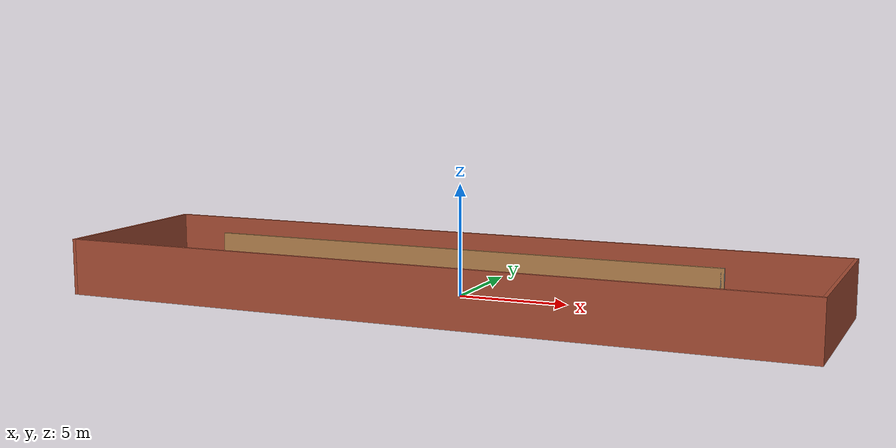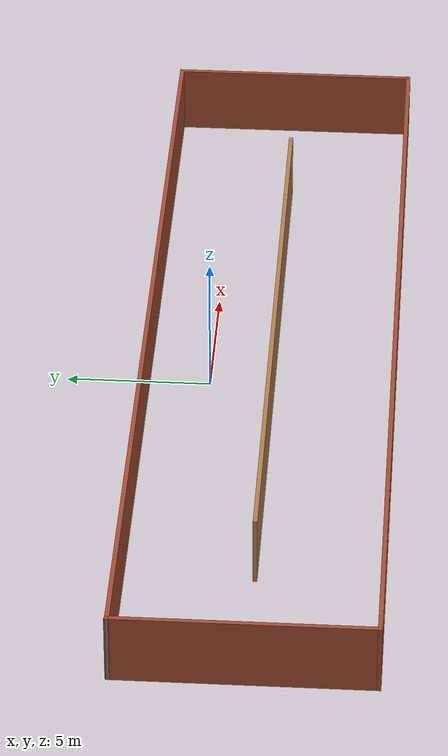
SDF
<?xml version='1.0'?>
<sdf version='1.6'>
  <model name='mybuilding'>
    <pose frame=''>0.375245 -2.09839 0 0 -0 0</pose>
    <link name='Wall_13'>
      <collision name='Wall_13_Collision'>
        <geometry>
          <box>
            <size>32.75 0.15 2.5</size>
          </box>
        </geometry>
        <pose frame=''>0 0 1.25 0 -0 0</pose>
      </collision>
      <visual name='Wall_13_Visual'>
        <pose frame=''>0 0 1.25 0 -0 0</pose>
        <geometry>
          <box>
            <size>32.75 0.15 2.5</size>
          </box>
        </geometry>
        <material>
          <script>
            <uri>file://media/materials/scripts/gazebo.material</uri>
            <name>Gazebo/Bricks</name>
          </script>
          <ambient>0.435294 0.796078 0.67451 1</ambient>
        </material>
        <meta>
          <layer>0</layer>
        </meta>
      </visual>
      <pose frame=''>0.013664 4.28634 0 0 -0 0</pose>
    </link>
    <link name='Wall_14'>
      <collision name='Wall_14_Collision'>
        <geometry>
          <box>
            <size>8.75 0.15 2.5</size>
          </box>
        </geometry>
        <pose frame=''>0 0 1.25 0 -0 0</pose>
      </collision>
      <visual name='Wall_14_Visual'>
        <pose frame=''>0 0 1.25 0 -0 0</pose>
        <geometry>
          <box>
            <size>8.75 0.15 2.5</size>
          </box>
        </geometry>
        <material>
          <script>
            <uri>file://media/materials/scripts/gazebo.material</uri>
            <name>Gazebo/Bricks</name>
          </script>
          <ambient>1 1 1 1</ambient>
        </material>
        <meta>
          <layer>0</layer>
        </meta>
      </visual>
      <pose frame=''>16.3137 -0.013664 0 0 0 -1.5708</pose>
    </link>
    <link name='Wall_15'>
      <collision name='Wall_15_Collision'>
        <geometry>
          <box>
            <size>32.75 0.15 2.5</size>
          </box>
        </geometry>
        <pose frame=''>0 0 1.25 0 -0 0</pose>
      </collision>
      <visual name='Wall_15_Visual'>
        <pose frame=''>0 0 1.25 0 -0 0</pose>
        <geometry>
          <box>
            <size>32.75 0.15 2.5</size>
          </box>
        </geometry>
        <material>
          <script>
            <uri>file://media/materials/scripts/gazebo.material</uri>
            <name>Gazebo/Bricks</name>
          </script>
          <ambient>0.435294 0.796078 0.67451 1</ambient>
        </material>
        <meta>
          <layer>0</layer>
        </meta>
      </visual>
      <pose frame=''>0.013664 -4.31366 0 0 -0 3.14159</pose>
    </link>
    <link name='Wall_16'>
      <collision name='Wall_16_Collision'>
        <geometry>
          <box>
            <size>8.75 0.15 2.5</size>
          </box>
        </geometry>
        <pose frame=''>0 0 1.25 0 -0 0</pose>
      </collision>
      <visual name='Wall_16_Visual'>
        <pose frame=''>0 0 1.25 0 -0 0</pose>
        <geometry>
          <box>
            <size>8.75 0.15 2.5</size>
          </box>
        </geometry>
        <material>
          <script>
            <uri>file://media/materials/scripts/gazebo.material</uri>
            <name>Gazebo/Bricks</name>
          </script>
          <ambient>0.435294 0.796078 0.67451 1</ambient>
        </material>
        <meta>
          <layer>0</layer>
        </meta>
      </visual>
      <pose frame=''>-16.2863 -0.013664 0 0 -0 1.5708</pose>
    </link>
    <link name='Wall_17'>
      <collision name='Wall_17_Collision'>
        <geometry>
          <box>
            <size>0.15 0.15 2.5</size>
          </box>
        </geometry>
        <pose frame=''>0 0 1.25 0 -0 0</pose>
      </collision>
      <visual name='Wall_17_Visual'>
        <pose frame=''>0 0 1.25 0 -0 0</pose>
        <geometry>
          <box>
            <size>0.15 0.15 2.5</size>
          </box>
        </geometry>
        <material>
          <script>
            <uri>file://media/materials/scripts/gazebo.material</uri>
            <name>Gazebo/Grey</name>
          </script>
          <ambient>1 1 1 1</ambient>
        </material>
        <meta>
          <layer>0</layer>
        </meta>
      </visual>
      <pose frame=''>-16.2863 4.28634 0 0 -0 1.05165</pose>
    </link>
    <link name='Wall_19'>
      <collision name='Wall_19_Collision'>
        <geometry>
          <box>
            <size>23 0.15 2.5</size>
          </box>
        </geometry>
        <pose frame=''>0 0 1.25 0 -0 0</pose>
      </collision>
      <visual name='Wall_19_Visual'>
        <pose frame=''>0 0 1.25 0 -0 0</pose>
        <geometry>
          <box>
            <size>23 0.15 2.5</size>
          </box>
        </geometry>
        <material>
          <script>
            <uri>file://media/materials/scripts/gazebo.material</uri>
            <name>Gazebo/Wood</name>
          </script>
          <ambient>0.760784 0.662745 0.627451 1</ambient>
        </material>
        <meta>
          <layer>0</layer>
        </meta>
      </visual>
      <pose frame=''>0.343051 -0.085349 0 0 -0 0</pose>
    </link>
    <link name='Wall_20'>
      <collision name='Wall_20_Collision'>
        <geometry>
          <box>
            <size>0.15 0.15 2.5</size>
          </box>
        </geometry>
        <pose frame=''>0 0 1.25 0 -0 0</pose>
      </collision>
      <visual name='Wall_20_Visual'>
        <pose frame=''>0 0 1.25 0 -0 0</pose>
        <geometry>
          <box>
            <size>0.15 0.15 2.5</size>
          </box>
        </geometry>
        <material>
          <script>
            <uri>file://media/materials/scripts/gazebo.material</uri>
            <name>Gazebo/Grey</name>
          </script>
          <ambient>1 1 1 1</ambient>
        </material>
        <meta>
          <layer>0</layer>
        </meta>
      </visual>
      <pose frame=''>11.7681 -0.085349 0 0 -0 0</pose>
    </link>
    <static>1</static>
  </model>
</sdf>
